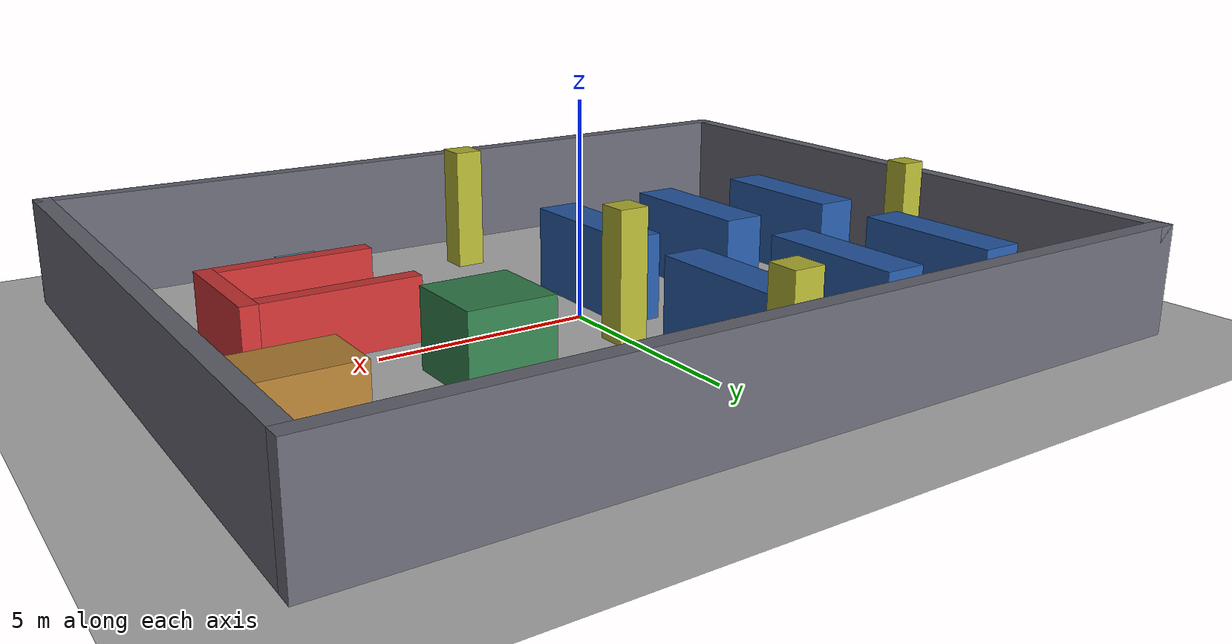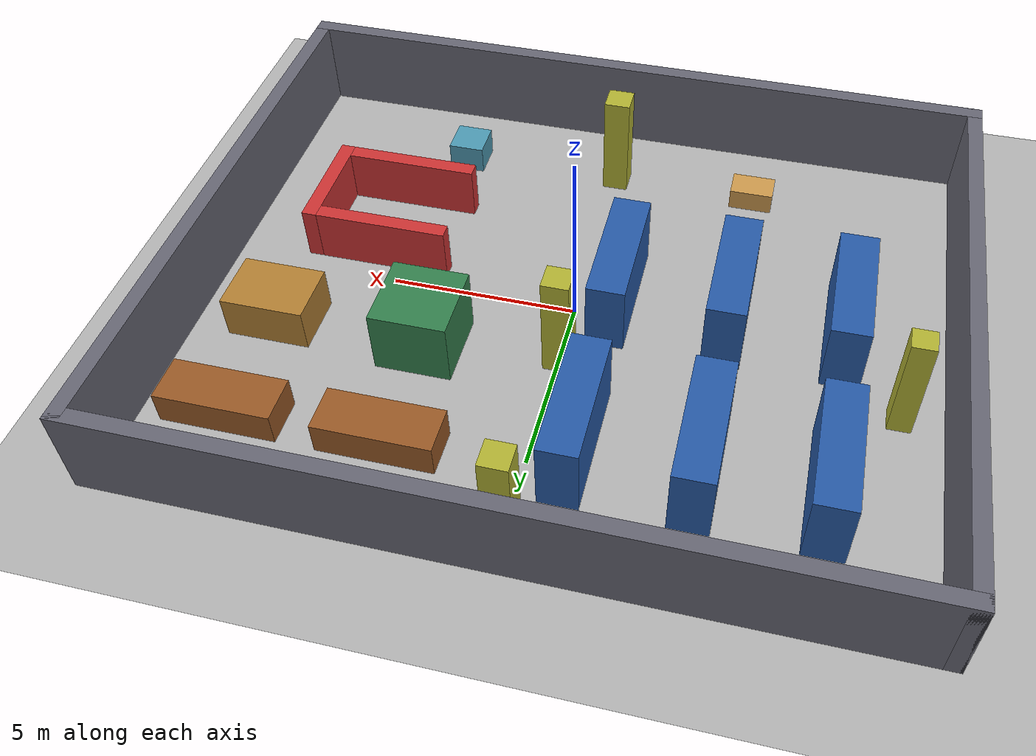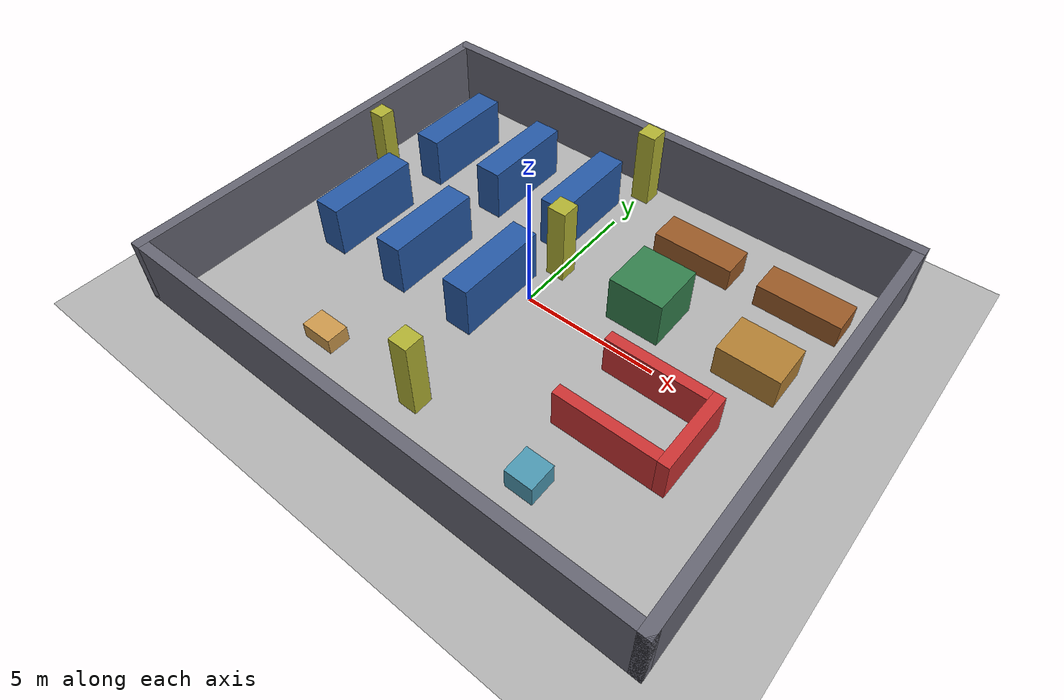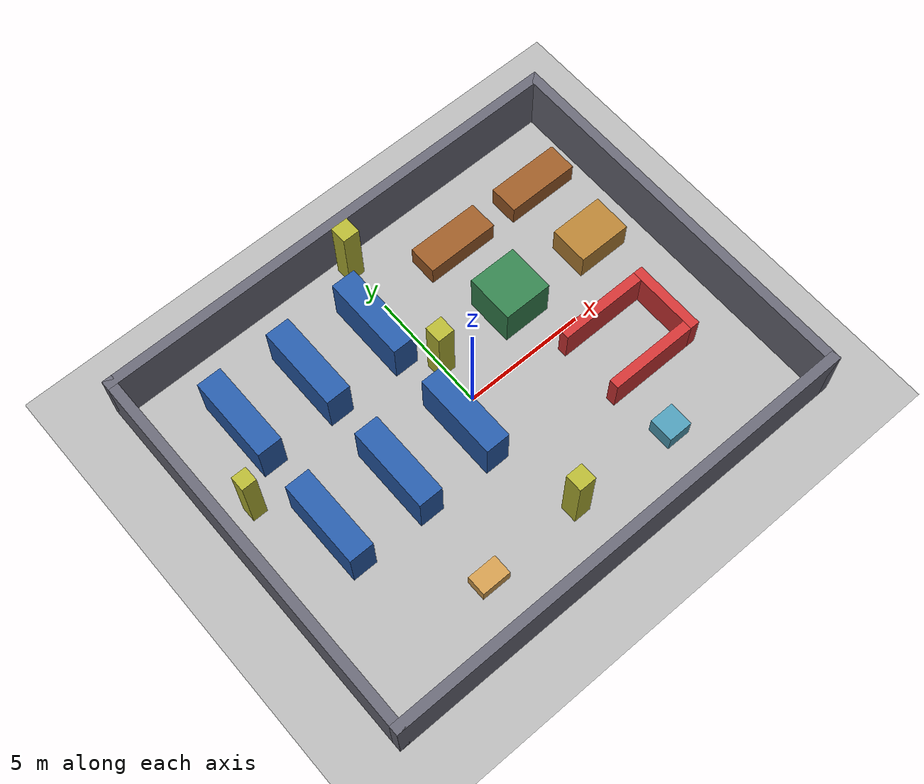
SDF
<sdf version='1.10'>
  <world name='factory_warehouse'>
    <physics name='1ms' type='ode'>
      <max_step_size>0.001</max_step_size>
      <real_time_factor>1.0</real_time_factor>
      <real_time_update_rate>1000</real_time_update_rate>
    </physics>

    <plugin name='gz::sim::systems::Physics' filename='gz-sim-physics-system'/>
    <plugin name='gz::sim::systems::UserCommands' filename='gz-sim-user-commands-system'/>
    <plugin name='gz::sim::systems::SceneBroadcaster' filename='gz-sim-scene-broadcaster-system'/>
    <plugin name='gz::sim::systems::Imu' filename='gz-sim-imu-system'/>
    <plugin name='gz::sim::systems::Sensors' filename='gz-sim-sensors-system'>
      <render_engine>ogre2</render_engine>
    </plugin>

    <gravity>0 0 -9.8</gravity>
    <scene>
      <ambient>0.5 0.5 0.55 1.0</ambient>
      <background>0.8 0.85 0.9 1.0</background>
      <shadows>true</shadows>
      <grid>true</grid>
    </scene>

    <light name='sun' type='directional'>
      <pose>0 0 15 0 0 0</pose>
      <cast_shadows>true</cast_shadows>
      <diffuse>0.9 0.9 0.9 1.0</diffuse>
      <specular>0.3 0.3 0.3 1.0</specular>
      <direction>-0.5 0.3 -0.9</direction>
    </light>

    <light name='factory_light_west' type='point'>
      <pose>-5.0 0 6.0 0 0 0</pose>
      <diffuse>0.6 0.6 0.6 1.0</diffuse>
      <attenuation>
        <range>20</range>
        <constant>0.5</constant>
        <linear>0.05</linear>
        <quadratic>0.01</quadratic>
      </attenuation>
    </light>

    <light name='factory_light_east' type='point'>
      <pose>5.0 0 6.0 0 0 0</pose>
      <diffuse>0.6 0.6 0.6 1.0</diffuse>
      <attenuation>
        <range>20</range>
        <constant>0.5</constant>
        <linear>0.05</linear>
        <quadratic>0.01</quadratic>
      </attenuation>
    </light>

    <!-- Floor (Concrete Floor) -->
    <model name='ground_plane'>
      <static>true</static>
      <link name='link'>
        <collision name='collision'>
          <geometry>
            <plane>
              <normal>0 0 1</normal>
              <size>40 40</size>
            </plane>
          </geometry>
          <surface>
            <friction>
              <ode>
                <mu>100</mu>
                <mu2>50</mu2>
              </ode>
            </friction>
          </surface>
        </collision>
        <visual name='visual'>
          <geometry>
            <plane>
              <normal>0 0 1</normal>
              <size>40 40</size>
            </plane>
          </geometry>
          <material>
            <ambient>0.65 0.65 0.65 1.0</ambient>
            <diffuse>0.7 0.7 0.7 1.0</diffuse>
          </material>
        </visual>
      </link>
    </model>

    <model name='wall_north'>
      <static>true</static>
      <pose>0.0000 7.8000 1.2500 0 0 0</pose>
      <link name='link'>
        <collision name='collision'>
          <geometry>
            <box><size>20.0000 0.4000 2.5000</size></box>
          </geometry>
          <surface>
            <friction>
              <ode><mu>1.0</mu><mu2>1.0</mu2></ode>
            </friction>
          </surface>
        </collision>
        <visual name='visual'>
          <geometry>
            <box><size>20.0000 0.4000 2.5000</size></box>
          </geometry>
          <material>
            <ambient>0.4 0.4 0.45 1.0</ambient>
            <diffuse>0.4 0.4 0.45 1.0</diffuse>
          </material>
        </visual>
      </link>
    </model>

    <model name='wall_south'>
      <static>true</static>
      <pose>0.0000 -7.8000 1.2500 0 0 0</pose>
      <link name='link'>
        <collision name='collision'>
          <geometry>
            <box><size>20.0000 0.4000 2.5000</size></box>
          </geometry>
          <surface>
            <friction>
              <ode><mu>1.0</mu><mu2>1.0</mu2></ode>
            </friction>
          </surface>
        </collision>
        <visual name='visual'>
          <geometry>
            <box><size>20.0000 0.4000 2.5000</size></box>
          </geometry>
          <material>
            <ambient>0.4 0.4 0.45 1.0</ambient>
            <diffuse>0.4 0.4 0.45 1.0</diffuse>
          </material>
        </visual>
      </link>
    </model>

    <model name='wall_west'>
      <static>true</static>
      <pose>-9.8000 0.0000 1.2500 0 0 0</pose>
      <link name='link'>
        <collision name='collision'>
          <geometry>
            <box><size>0.4000 16.0000 2.5000</size></box>
          </geometry>
          <surface>
            <friction>
              <ode><mu>1.0</mu><mu2>1.0</mu2></ode>
            </friction>
          </surface>
        </collision>
        <visual name='visual'>
          <geometry>
            <box><size>0.4000 16.0000 2.5000</size></box>
          </geometry>
          <material>
            <ambient>0.4 0.4 0.45 1.0</ambient>
            <diffuse>0.4 0.4 0.45 1.0</diffuse>
          </material>
        </visual>
      </link>
    </model>

    <model name='wall_east'>
      <static>true</static>
      <pose>9.8000 0.0000 1.2500 0 0 0</pose>
      <link name='link'>
        <collision name='collision'>
          <geometry>
            <box><size>0.4000 16.0000 2.5000</size></box>
          </geometry>
          <surface>
            <friction>
              <ode><mu>1.0</mu><mu2>1.0</mu2></ode>
            </friction>
          </surface>
        </collision>
        <visual name='visual'>
          <geometry>
            <box><size>0.4000 16.0000 2.5000</size></box>
          </geometry>
          <material>
            <ambient>0.4 0.4 0.45 1.0</ambient>
            <diffuse>0.4 0.4 0.45 1.0</diffuse>
          </material>
        </visual>
      </link>
    </model>

    <model name='rack_1_north'>
      <static>true</static>
      <pose>-7.0000 4.2500 1.0000 0 0 0</pose>
      <link name='link'>
        <collision name='collision'>
          <geometry>
            <box><size>1.0000 3.5000 2.0000</size></box>
          </geometry>
          <surface>
            <friction>
              <ode><mu>1.0</mu><mu2>1.0</mu2></ode>
            </friction>
          </surface>
        </collision>
        <visual name='visual'>
          <geometry>
            <box><size>1.0000 3.5000 2.0000</size></box>
          </geometry>
          <material>
            <ambient>0.15 0.35 0.65 1.0</ambient>
            <diffuse>0.15 0.35 0.65 1.0</diffuse>
          </material>
        </visual>
      </link>
    </model>

    <model name='rack_1_south'>
      <static>true</static>
      <pose>-7.0000 -0.7500 1.0000 0 0 0</pose>
      <link name='link'>
        <collision name='collision'>
          <geometry>
            <box><size>1.0000 3.5000 2.0000</size></box>
          </geometry>
          <surface>
            <friction>
              <ode><mu>1.0</mu><mu2>1.0</mu2></ode>
            </friction>
          </surface>
        </collision>
        <visual name='visual'>
          <geometry>
            <box><size>1.0000 3.5000 2.0000</size></box>
          </geometry>
          <material>
            <ambient>0.15 0.35 0.65 1.0</ambient>
            <diffuse>0.15 0.35 0.65 1.0</diffuse>
          </material>
        </visual>
      </link>
    </model>

    <model name='rack_2_north'>
      <static>true</static>
      <pose>-4.0000 4.2500 1.0000 0 0 0</pose>
      <link name='link'>
        <collision name='collision'>
          <geometry>
            <box><size>1.0000 3.5000 2.0000</size></box>
          </geometry>
          <surface>
            <friction>
              <ode><mu>1.0</mu><mu2>1.0</mu2></ode>
            </friction>
          </surface>
        </collision>
        <visual name='visual'>
          <geometry>
            <box><size>1.0000 3.5000 2.0000</size></box>
          </geometry>
          <material>
            <ambient>0.15 0.35 0.65 1.0</ambient>
            <diffuse>0.15 0.35 0.65 1.0</diffuse>
          </material>
        </visual>
      </link>
    </model>

    <model name='rack_2_south'>
      <static>true</static>
      <pose>-4.0000 -0.7500 1.0000 0 0 0</pose>
      <link name='link'>
        <collision name='collision'>
          <geometry>
            <box><size>1.0000 3.5000 2.0000</size></box>
          </geometry>
          <surface>
            <friction>
              <ode><mu>1.0</mu><mu2>1.0</mu2></ode>
            </friction>
          </surface>
        </collision>
        <visual name='visual'>
          <geometry>
            <box><size>1.0000 3.5000 2.0000</size></box>
          </geometry>
          <material>
            <ambient>0.15 0.35 0.65 1.0</ambient>
            <diffuse>0.15 0.35 0.65 1.0</diffuse>
          </material>
        </visual>
      </link>
    </model>

    <model name='rack_3_north'>
      <static>true</static>
      <pose>-1.0000 4.2500 1.0000 0 0 0</pose>
      <link name='link'>
        <collision name='collision'>
          <geometry>
            <box><size>1.0000 3.5000 2.0000</size></box>
          </geometry>
          <surface>
            <friction>
              <ode><mu>1.0</mu><mu2>1.0</mu2></ode>
            </friction>
          </surface>
        </collision>
        <visual name='visual'>
          <geometry>
            <box><size>1.0000 3.5000 2.0000</size></box>
          </geometry>
          <material>
            <ambient>0.15 0.35 0.65 1.0</ambient>
            <diffuse>0.15 0.35 0.65 1.0</diffuse>
          </material>
        </visual>
      </link>
    </model>

    <model name='rack_3_south'>
      <static>true</static>
      <pose>-1.0000 -0.7500 1.0000 0 0 0</pose>
      <link name='link'>
        <collision name='collision'>
          <geometry>
            <box><size>1.0000 3.5000 2.0000</size></box>
          </geometry>
          <surface>
            <friction>
              <ode><mu>1.0</mu><mu2>1.0</mu2></ode>
            </friction>
          </surface>
        </collision>
        <visual name='visual'>
          <geometry>
            <box><size>1.0000 3.5000 2.0000</size></box>
          </geometry>
          <material>
            <ambient>0.15 0.35 0.65 1.0</ambient>
            <diffuse>0.15 0.35 0.65 1.0</diffuse>
          </material>
        </visual>
      </link>
    </model>

    <model name='pillar_center_south'>
      <static>true</static>
      <pose>0.0000 -5.5000 1.5000 0 0 0</pose>
      <link name='link'>
        <collision name='collision'>
          <geometry>
            <box><size>0.7000 0.7000 3.0000</size></box>
          </geometry>
          <surface>
            <friction>
              <ode><mu>1.0</mu><mu2>1.0</mu2></ode>
            </friction>
          </surface>
        </collision>
        <visual name='visual'>
          <geometry>
            <box><size>0.7000 0.7000 3.0000</size></box>
          </geometry>
          <material>
            <ambient>0.7 0.7 0.2 1.0</ambient>
            <diffuse>0.7 0.7 0.2 1.0</diffuse>
          </material>
        </visual>
      </link>
    </model>

    <model name='pillar_center_mid'>
      <static>true</static>
      <pose>0.0000 1.7500 1.5000 0 0 0</pose>
      <link name='link'>
        <collision name='collision'>
          <geometry>
            <box><size>0.7000 0.7000 3.0000</size></box>
          </geometry>
          <surface>
            <friction>
              <ode><mu>1.0</mu><mu2>1.0</mu2></ode>
            </friction>
          </surface>
        </collision>
        <visual name='visual'>
          <geometry>
            <box><size>0.7000 0.7000 3.0000</size></box>
          </geometry>
          <material>
            <ambient>0.7 0.7 0.2 1.0</ambient>
            <diffuse>0.7 0.7 0.2 1.0</diffuse>
          </material>
        </visual>
      </link>
    </model>

    <model name='pillar_center_north'>
      <static>true</static>
      <pose>0.0000 7.0000 1.5000 0 0 0</pose>
      <link name='link'>
        <collision name='collision'>
          <geometry>
            <box><size>0.7000 0.7000 3.0000</size></box>
          </geometry>
          <surface>
            <friction>
              <ode><mu>1.0</mu><mu2>1.0</mu2></ode>
            </friction>
          </surface>
        </collision>
        <visual name='visual'>
          <geometry>
            <box><size>0.7000 0.7000 3.0000</size></box>
          </geometry>
          <material>
            <ambient>0.7 0.7 0.2 1.0</ambient>
            <diffuse>0.7 0.7 0.2 1.0</diffuse>
          </material>
        </visual>
      </link>
    </model>

    <model name='pillar_west'>
      <static>true</static>
      <pose>-8.5000 1.7500 1.5000 0 0 0</pose>
      <link name='link'>
        <collision name='collision'>
          <geometry>
            <box><size>0.6000 0.6000 3.0000</size></box>
          </geometry>
          <surface>
            <friction>
              <ode><mu>1.0</mu><mu2>1.0</mu2></ode>
            </friction>
          </surface>
        </collision>
        <visual name='visual'>
          <geometry>
            <box><size>0.6000 0.6000 3.0000</size></box>
          </geometry>
          <material>
            <ambient>0.7 0.7 0.2 1.0</ambient>
            <diffuse>0.7 0.7 0.2 1.0</diffuse>
          </material>
        </visual>
      </link>
    </model>

    <model name='workbench_1'>
      <static>true</static>
      <pose>3.5000 5.2000 0.4500 0 0 0</pose>
      <link name='link'>
        <collision name='collision'>
          <geometry>
            <box><size>3.0000 1.2000 0.9000</size></box>
          </geometry>
          <surface>
            <friction>
              <ode><mu>1.0</mu><mu2>1.0</mu2></ode>
            </friction>
          </surface>
        </collision>
        <visual name='visual'>
          <geometry>
            <box><size>3.0000 1.2000 0.9000</size></box>
          </geometry>
          <material>
            <ambient>0.6 0.35 0.15 1.0</ambient>
            <diffuse>0.6 0.35 0.15 1.0</diffuse>
          </material>
        </visual>
      </link>
    </model>

    <model name='workbench_2'>
      <static>true</static>
      <pose>7.5000 5.2000 0.4500 0 0 0</pose>
      <link name='link'>
        <collision name='collision'>
          <geometry>
            <box><size>3.0000 1.2000 0.9000</size></box>
          </geometry>
          <surface>
            <friction>
              <ode><mu>1.0</mu><mu2>1.0</mu2></ode>
            </friction>
          </surface>
        </collision>
        <visual name='visual'>
          <geometry>
            <box><size>3.0000 1.2000 0.9000</size></box>
          </geometry>
          <material>
            <ambient>0.6 0.35 0.15 1.0</ambient>
            <diffuse>0.6 0.35 0.15 1.0</diffuse>
          </material>
        </visual>
      </link>
    </model>

    <model name='cnc_machine'>
      <static>true</static>
      <pose>3.5000 2.0000 0.9000 0 0 0</pose>
      <link name='link'>
        <collision name='collision'>
          <geometry>
            <box><size>2.0000 2.0000 1.8000</size></box>
          </geometry>
          <surface>
            <friction>
              <ode><mu>1.0</mu><mu2>1.0</mu2></ode>
            </friction>
          </surface>
        </collision>
        <visual name='visual'>
          <geometry>
            <box><size>2.0000 2.0000 1.8000</size></box>
          </geometry>
          <material>
            <ambient>0.2 0.5 0.3 1.0</ambient>
            <diffuse>0.2 0.5 0.3 1.0</diffuse>
          </material>
        </visual>
      </link>
    </model>

    <model name='pallet_stack'>
      <static>true</static>
      <pose>7.5000 2.0000 0.6000 0 0 0</pose>
      <link name='link'>
        <collision name='collision'>
          <geometry>
            <box><size>2.2000 1.6000 1.2000</size></box>
          </geometry>
          <surface>
            <friction>
              <ode><mu>1.0</mu><mu2>1.0</mu2></ode>
            </friction>
          </surface>
        </collision>
        <visual name='visual'>
          <geometry>
            <box><size>2.2000 1.6000 1.2000</size></box>
          </geometry>
          <material>
            <ambient>0.7 0.5 0.2 1.0</ambient>
            <diffuse>0.7 0.5 0.2 1.0</diffuse>
          </material>
        </visual>
      </link>
    </model>

    <model name='u_trap_back'>
      <static>true</static>
      <pose>7.5000 -2.0000 0.7500 0 0 0</pose>
      <link name='link'>
        <collision name='collision'>
          <geometry>
            <box><size>0.4000 3.0000 1.5000</size></box>
          </geometry>
          <surface>
            <friction>
              <ode><mu>1.0</mu><mu2>1.0</mu2></ode>
            </friction>
          </surface>
        </collision>
        <visual name='visual'>
          <geometry>
            <box><size>0.4000 3.0000 1.5000</size></box>
          </geometry>
          <material>
            <ambient>0.8 0.2 0.2 1.0</ambient>
            <diffuse>0.8 0.2 0.2 1.0</diffuse>
          </material>
        </visual>
      </link>
    </model>

    <model name='u_trap_top'>
      <static>true</static>
      <pose>5.5000 -0.7000 0.7500 0 0 0</pose>
      <link name='link'>
        <collision name='collision'>
          <geometry>
            <box><size>3.6000 0.4000 1.5000</size></box>
          </geometry>
          <surface>
            <friction>
              <ode><mu>1.0</mu><mu2>1.0</mu2></ode>
            </friction>
          </surface>
        </collision>
        <visual name='visual'>
          <geometry>
            <box><size>3.6000 0.4000 1.5000</size></box>
          </geometry>
          <material>
            <ambient>0.8 0.2 0.2 1.0</ambient>
            <diffuse>0.8 0.2 0.2 1.0</diffuse>
          </material>
        </visual>
      </link>
    </model>

    <model name='u_trap_bottom'>
      <static>true</static>
      <pose>5.5000 -3.3000 0.7500 0 0 0</pose>
      <link name='link'>
        <collision name='collision'>
          <geometry>
            <box><size>3.6000 0.4000 1.5000</size></box>
          </geometry>
          <surface>
            <friction>
              <ode><mu>1.0</mu><mu2>1.0</mu2></ode>
            </friction>
          </surface>
        </collision>
        <visual name='visual'>
          <geometry>
            <box><size>3.6000 0.4000 1.5000</size></box>
          </geometry>
          <material>
            <ambient>0.8 0.2 0.2 1.0</ambient>
            <diffuse>0.8 0.2 0.2 1.0</diffuse>
          </material>
        </visual>
      </link>
    </model>

    <model name='pallet_corridor'>
      <static>true</static>
      <pose>-4.0000 -5.5000 0.3000 0 0 0</pose>
      <link name='link'>
        <collision name='collision'>
          <geometry>
            <box><size>1.2000 0.8000 0.6000</size></box>
          </geometry>
          <surface>
            <friction>
              <ode><mu>1.0</mu><mu2>1.0</mu2></ode>
            </friction>
          </surface>
        </collision>
        <visual name='visual'>
          <geometry>
            <box><size>1.2000 0.8000 0.6000</size></box>
          </geometry>
          <material>
            <ambient>0.8 0.6 0.3 1.0</ambient>
            <diffuse>0.8 0.6 0.3 1.0</diffuse>
          </material>
        </visual>
      </link>
    </model>

    <model name='cart_corridor'>
      <static>true</static>
      <pose>4.5000 -5.5000 0.4000 0 0 0</pose>
      <link name='link'>
        <collision name='collision'>
          <geometry>
            <box><size>1.0000 1.0000 0.8000</size></box>
          </geometry>
          <surface>
            <friction>
              <ode><mu>1.0</mu><mu2>1.0</mu2></ode>
            </friction>
          </surface>
        </collision>
        <visual name='visual'>
          <geometry>
            <box><size>1.0000 1.0000 0.8000</size></box>
          </geometry>
          <material>
            <ambient>0.3 0.6 0.7 1.0</ambient>
            <diffuse>0.3 0.6 0.7 1.0</diffuse>
          </material>
        </visual>
      </link>
    </model>

  </world>
</sdf>
